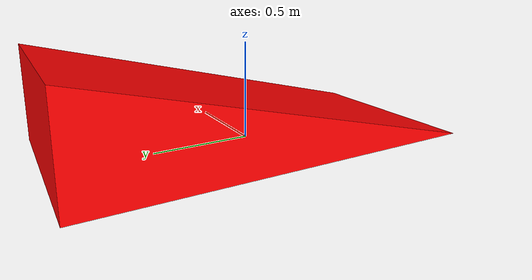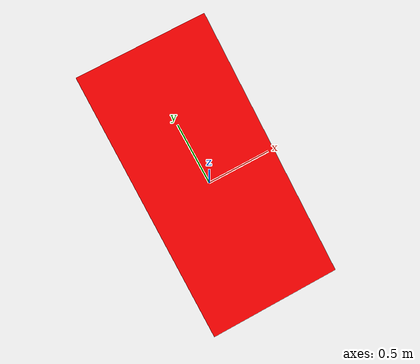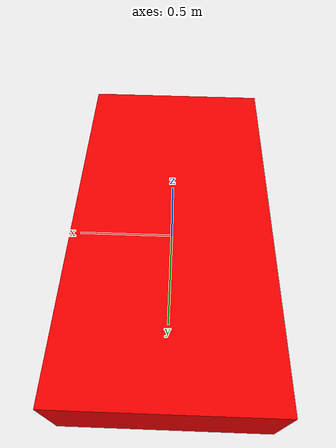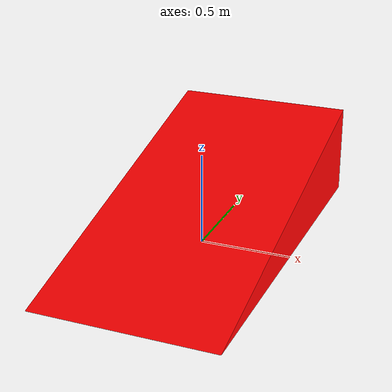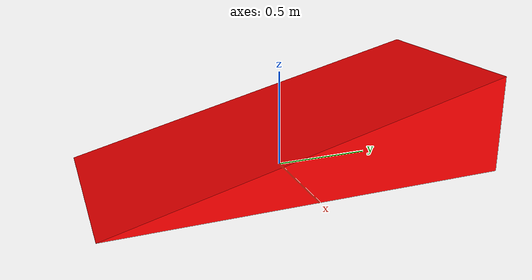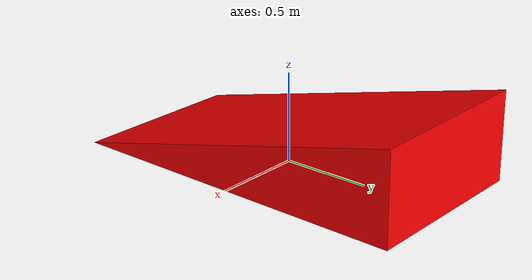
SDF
<?xml version="1.0" ?>
<sdf version="1.6">
  <model name="slope">
    <static>true</static>
    <link name="slope">
      <pose>0 0 0 0 0 0</pose>
      <collision name="collision">
        <geometry>
          <mesh>
            <uri>model://slope/meshes/slope.dae</uri>
            <scale>.5 1 .25</scale>
          </mesh>
        </geometry>
        <surface>
            <friction>
                <ode>
                    <mu>1</mu>
                    <mu2>1</mu2>
                    <slip1>1</slip1>
                    <slip2>1</slip2>
                </ode>
            </friction>
        </surface>
      </collision>
      <visual name="visual">
        <geometry>
          <mesh>
            <uri>model://slope/meshes/slope.dae</uri>
            <scale>.5 1 .25</scale>
          </mesh>
        </geometry>
        <cast_shadows>true</cast_shadows>
        <material name="slope_mat">
          <diffuse>1 0 0 1</diffuse>
          <ambient>1 1 1 1</ambient>
          <emmisive>1 1 1 1</emmisive>
          <specular>1 1 0 1</specular>
          <shininess>1</shininess>
          <pbr>
            <metal>
              <metalness>.2</metalness>
            </metal>
          </pbr>
        </material>
      </visual>
    </link>
  </model>
</sdf>
